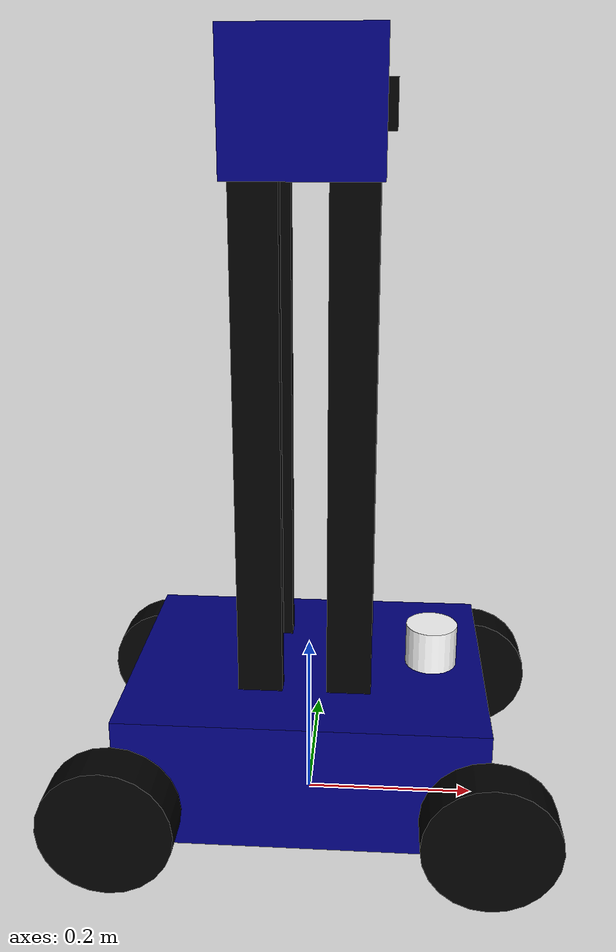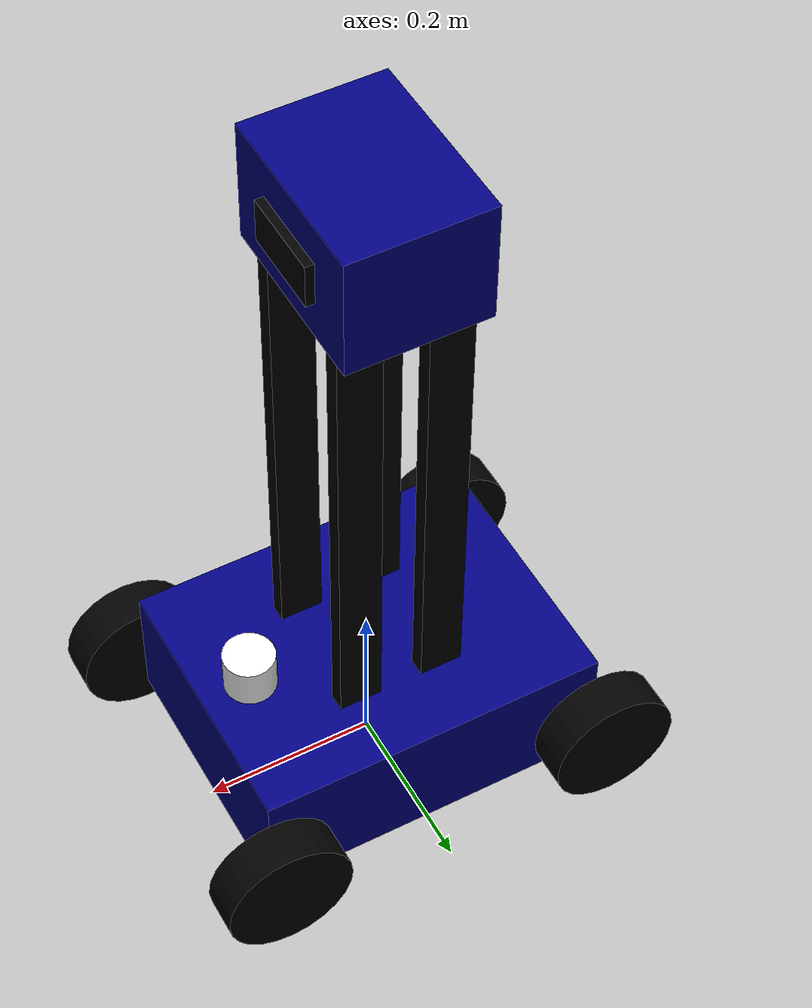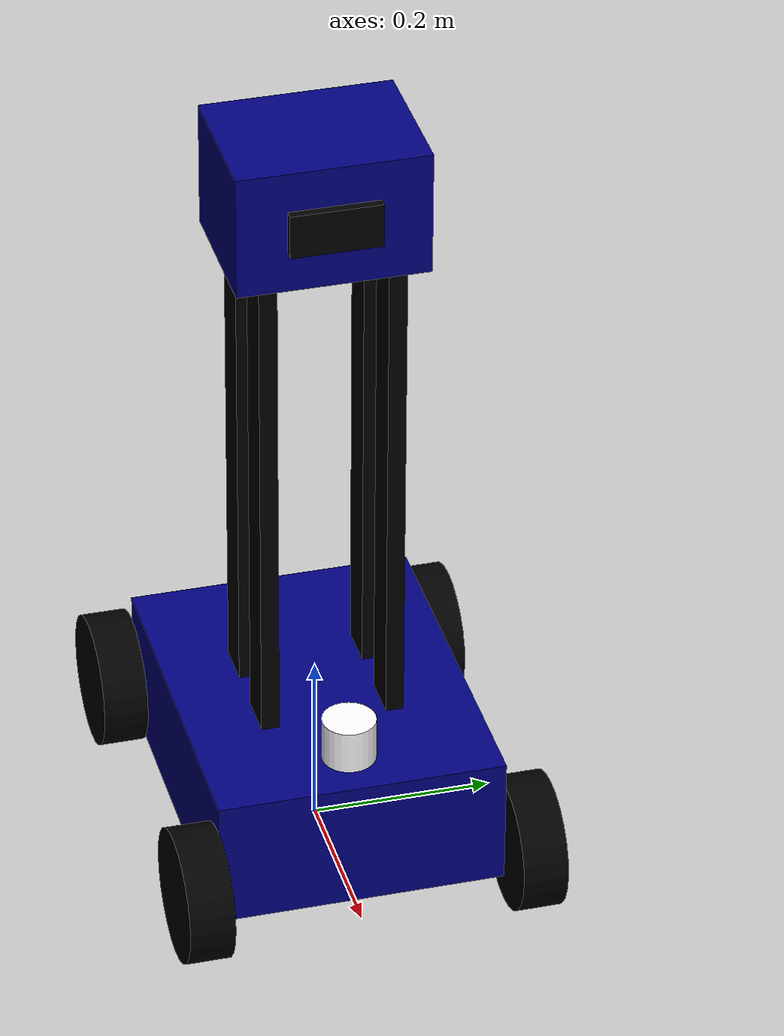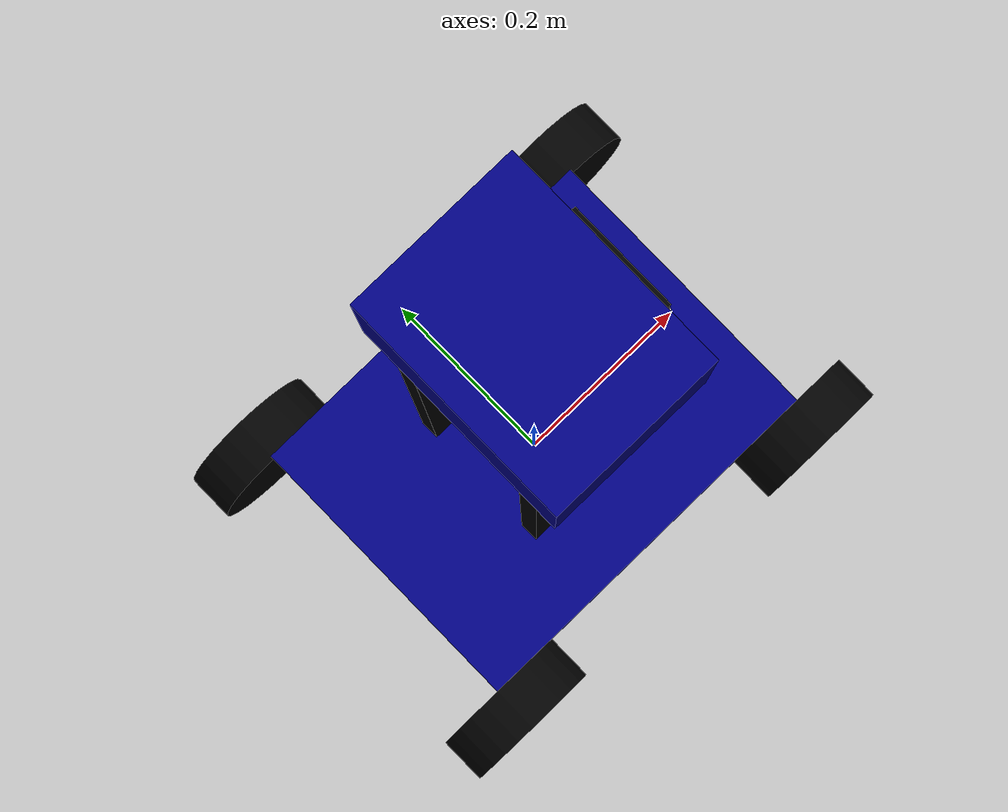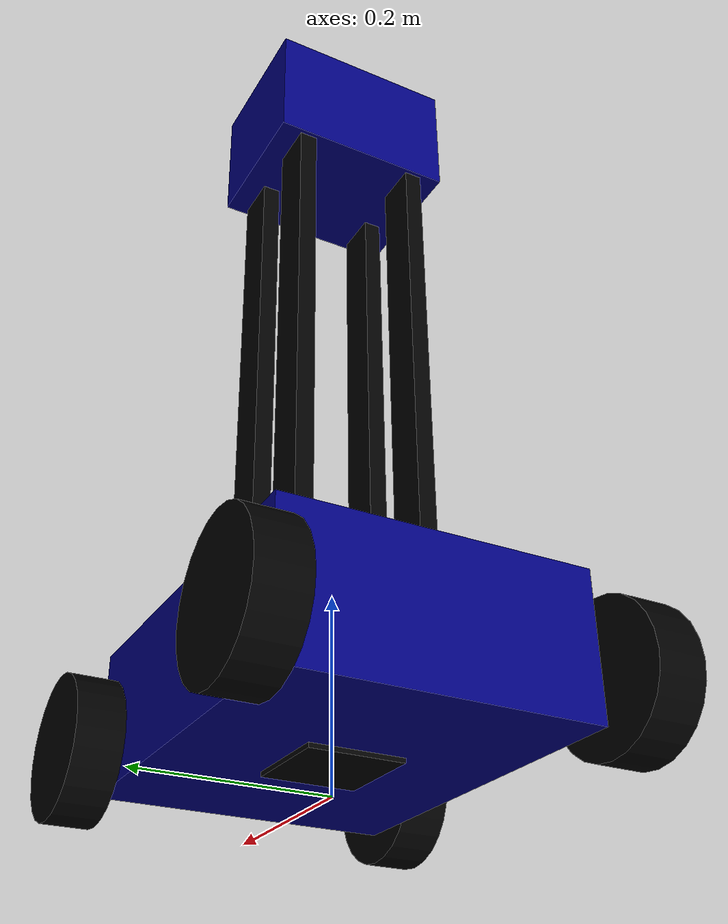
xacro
<?xml version="1.0"?>
<robot name="ELA2.0" xmlns:xacro="http://www.ros.org/wiki/xacro">
    <xacro:include filename="common_properties.xacro"/>
    <xacro:include filename="mobile_base.xacro"/>
    <xacro:include filename="mobile_base_control.xacro"/> <!-- Physical robot movement control -->
    <xacro:include filename="mobile_base_gazebo.xacro"/> <!-- Simulation robot movement control-->
    <xacro:include filename="camera.xacro"/>
    <xacro:include filename="imu.xacro"/>
    <xacro:include filename="lidar.xacro"/>
</robot>

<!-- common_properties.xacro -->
<robot xmlns:xacro="http://www.ros.org/wiki/xacro">

    <material name="blue">
        <color rgba="0 0 0.5 1" />
    </material>

    <material name="black">
        <color rgba="0 0 0 1" />
    </material>

    <material name="white">
        <color rgba="1 1 1 1" />
    </material>

    <xacro:macro name="box_inertia" params="m l w h xyz rpy">
        <inertial>
            <origin xyz="${xyz}" rpy="${rpy}" />
            <mass value="${m}" />
            <inertia ixx="${(m/12) * (h*h + l*l)}" ixy="0" ixz="0"
                     iyy="${(m/12) * (w*w + l*l)}" iyz="0"
                     izz="${(m/12) * (w*w + h*h)}" />
        </inertial>
    </xacro:macro>

    <xacro:macro name="cylinder_inertia" params="m r h xyz rpy">
        <inertial>
            <origin xyz="${xyz}" rpy="${rpy}" />
            <mass value="${m}" />
            <inertia ixx="${(m/12) * (3*r*r + h*h)}" ixy="0" ixz="0"
                     iyy="${(m/12) * (3*r*r + h*h)}" iyz="0"
                     izz="${(m/2) * (r*r)}" />
        </inertial>
    </xacro:macro>

    <xacro:macro name="sphere_inertia" params="m r xyz rpy">
        <inertial>
            <origin xyz="${xyz}" rpy="${rpy}" />
            <mass value="${m}" />
            <inertia ixx="${(2/5) * m * r * r}" ixy="0" ixz="0"
                     iyy="${(2/5) * m * r * r}" iyz="0"
                     izz="${(2/5) * m * r * r}" />
        </inertial>
    </xacro:macro>

</robot>

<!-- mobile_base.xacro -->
<robot xmlns:xacro="http://www.ros.org/wiki/xacro">

    <xacro:property name="base_length" value="0.41" />
    <xacro:property name="base_width" value="0.32" />
    <xacro:property name="base_height" value="0.15" />
    <xacro:property name="pillar_length" value="0.05" />
    <xacro:property name="pillar_width" value="0.02" />
    <xacro:property name="pillar_height" value="0.56" />
    <xacro:property name="wheel_radius" value="0.075" />
    <xacro:property name="wheel_length" value="0.05" />
    <xacro:property name="platform_length" value="0.16" />
    <xacro:property name="platform_width" value="0.21" />
    <xacro:property name="platform_height" value="0.14" />

    <xacro:macro name="wheel_link" params="prefix">
        <link name="${prefix}_wheel_link">
            <visual>
                <geometry>
                    <cylinder radius="${wheel_radius}" length="${wheel_length}"/>
                </geometry>
                <origin xyz="0 0 0" rpy="${pi / 2.0} 0 0" />
                <material name="black"/>
            </visual>
            <collision>
                <geometry>
                    <cylinder radius="${wheel_radius}" length="${wheel_length}"/>
                </geometry>
                <origin xyz="0 0 0" rpy="${pi / 2.0} 0 0" />
            </collision>
            <xacro:cylinder_inertia m="5.0" r="${5*wheel_radius}" h="${5*wheel_length}"
                                    xyz="0 0 0" rpy="${pi / 2.0} 0 0" />
        </link>
    </xacro:macro>

    <xacro:macro name="pillar_link" params="prefix">
        <link name="${prefix}_pillar_link">
            <visual>
                <geometry>
                    <box size="${pillar_length} ${pillar_width} ${pillar_height}"/>
                </geometry>
                <origin xyz="0 0 ${pillar_height / 2.0}" rpy="0 0 0" />
                <material name="black"/>
            </visual>
                <collision>
                    <geometry>
                        <box size="${pillar_length} ${pillar_width} ${pillar_height}"/>
                    </geometry>
                    <origin xyz="0 0 ${pillar_height / 2.0}" rpy="0 0 0" />
                </collision>
            <xacro:box_inertia m="5.0" l="${2*pillar_length}" w="${2*pillar_width}" h="${2*pillar_height}"
                            xyz="0 0 ${pillar_height / 2.0}" rpy="0 0 0"/>
        </link>
    </xacro:macro>

    <link name="base_footprint"/>

    <link name="base_link">
        <visual>
            <geometry>
                <box size="${base_length} ${base_width} ${base_height}"/>
            </geometry>
            <origin xyz="0 0 ${base_height / 2.0}" rpy="0 0 0" />
            <material name="blue"/>
        </visual>
            <collision>
                <geometry>
                    <box size="${base_length} ${base_width} ${base_height}"/>
                </geometry>
                <origin xyz="0 0 ${base_height / 2.0}" rpy="0 0 0" />
            </collision>
        <xacro:box_inertia m="15.0" l="${5*base_length}" w="${5*base_width}" h="${5*base_height}"
                           xyz="0 0 ${base_height / 2.0}" rpy="0 0 0"/>
    </link>

    <link name="upper_platform_link">
        <visual>
            <geometry>
                <box size="${platform_length} ${platform_width} ${platform_height}"/>
            </geometry>
            <origin xyz="0 0 0" rpy="0 0 0" />
            <material name="blue"/>
        </visual>
            <collision>
                <geometry>
                    <box size="${platform_length} ${platform_width} ${platform_height}"/>
                </geometry>
                <origin xyz="0 0 0" rpy="0 0 0" />
            </collision>
        <xacro:box_inertia m="5.0" l="${2*platform_length}" w="${2*platform_width}" h="${2*platform_height}"
                           xyz="0 0 0" rpy="0 0 0"/>
    </link>

    <xacro:wheel_link prefix="rr"/>
    <xacro:wheel_link prefix="rl"/>
    <xacro:wheel_link prefix="fr"/>
    <xacro:wheel_link prefix="fl"/>
    <xacro:pillar_link prefix="right_front"/>
    <xacro:pillar_link prefix="left_front"/>
    <xacro:pillar_link prefix="right_rear"/>
    <xacro:pillar_link prefix="left_rear"/>

    <joint name="base_joint" type="fixed">
        <parent link="base_footprint"/>
        <child link="base_link"/>
        <origin xyz="0 0 0.03" rpy="0 0 0"/>
    </joint>

    <joint name="upper_platform_joint" type="fixed">
        <parent link="base_link"/>
        <child link="upper_platform_link"/>
        <origin xyz="0 0 ${pillar_height + base_height +0.14 / 2.0}" rpy="0 0 0"/>
    </joint>

    <joint name="rr_wheel_joint" type="continuous">
        <parent link="base_link"/>
        <child link="rr_wheel_link"/>
        <origin xyz="${-base_length / 2.0} ${-(base_width + wheel_length) / 2.0} 0.045" rpy="0 0 0"/>
        <axis xyz="0 1 0"/>
    </joint>

    <joint name="rl_wheel_joint" type="continuous">
        <parent link="base_link"/>
        <child link="rl_wheel_link"/>
        <origin xyz="${-base_length / 2.0} ${(base_width + wheel_length) / 2.0} 0.045" rpy="0 0 0"/>
        <axis xyz="0 1 0"/>
    </joint>

    <joint name="fr_wheel_joint" type="continuous">
        <parent link="base_link"/>
        <child link="fr_wheel_link"/>
        <origin xyz="${base_length / 2.0} ${-(base_width + wheel_length) / 2.0} 0.045" rpy="0 0 0"/>
        <axis xyz="0 1 0"/>
    </joint>

    <joint name="fl_wheel_joint" type="continuous">
        <parent link="base_link"/>
        <child link="fl_wheel_link"/>
        <origin xyz="${base_length / 2.0} ${(base_width + wheel_length) / 2.0} 0.045" rpy="0 0 0"/>
        <axis xyz="0 1 0"/>
    </joint>

    <joint name="right_front_pillar_joint" type="fixed">
        <parent link="base_link"/>
        <child link="right_front_pillar_link"/>
        <origin xyz="0.05 0.07 ${base_height}" rpy="0 0 0"/>
        <axis xyz="0 1 0"/>
    </joint>

    <joint name="left_front_pillar_joint" type="fixed">
        <parent link="base_link"/>
        <child link="left_front_pillar_link"/>
        <origin xyz="0.05 -0.07 ${base_height}" rpy="0 0 0"/>
        <axis xyz="0 1 0"/>
    </joint>

    <joint name="right_rear_pillar_joint" type="fixed">
        <parent link="base_link"/>
        <child link="right_rear_pillar_link"/>
        <origin xyz="-0.05 0.07 ${base_height}" rpy="0 0 0"/>
        <axis xyz="0 1 0"/>
    </joint>

    <joint name="left_rear_pillar_joint" type="fixed">
        <parent link="base_link"/>
        <child link="left_rear_pillar_link"/>
        <origin xyz="-0.05 -0.07 ${base_height}" rpy="0 0 0"/>
        <axis xyz="0 1 0"/>
    </joint>

</robot>

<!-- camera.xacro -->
<robot xmlns:xacro="http://www.ros.org/wiki/xacro">

    <xacro:property name="camera_length" value="0.01"/>
    <xacro:property name="camera_width" value="0.1"/>
    <xacro:property name="camera_height" value="0.05"/>

    <link name="camera_link">
        <visual>
            <geometry>
                <box size="${camera_length} ${camera_width} ${camera_height}"/>
            </geometry>
            <material name="black" />
            <collision>
                <geometry>
                    <box size="${camera_length} ${camera_width} ${camera_height}"/>
                </geometry>
            </collision>
            <xacro:box_inertia m="0.1" l="${camera_length}" w="${camera_width}" h="${camera_height}" xyz="0 0 0" rpy="0 0 0"/>
        </visual>
    </link>

    <joint name="platform_camera_joint" type="fixed">
        <parent link="upper_platform_link"/>
        <child link="camera_link"/>
        <origin xyz="${(platform_length + camera_length) / 2.0} 0 0" rpy="0 0 0"/>
    </joint>

    <gazebo reference="camera_link">
        <material>Gazebo/Red</material>
        <sensor name="camera_sensor" type="camera">
            <pose>0 0 0 0 0 0</pose>
            <visualize>true</visualize>
            <update_rate>30.0</update_rate>
            <plugin name="camera_controller" filename="libgazebo_ros_camera.so">
                <frame_name>camera_link</frame_name>
            </plugin>
        </sensor>
    </gazebo>

</robot>

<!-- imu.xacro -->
<robot xmlns:xacro="http://www.ros.org/wiki/xacro">

    <xacro:property name="imu_length" value="0.1"/>
    <xacro:property name="imu_width" value="0.1"/>
    <xacro:property name="imu_height" value="0.01"/>

    <link name="imu_link">
        <visual>
            <geometry>
                <box size="${imu_length} ${imu_width} ${imu_height}"/>
            </geometry>
            <material name="black" />
            <collision>
                <geometry>
                    <box size="${imu_length} ${imu_width} ${imu_height}"/>
                </geometry>
            </collision>
            <xacro:box_inertia m="0.1" l="${imu_length}" w="${imu_width}" h="${imu_height}" xyz="0 0 0" rpy="0 0 0"/>
        </visual>
    </link>

    <joint name="base_imu_joint" type="fixed">
        <parent link="base_link"/>
        <child link="imu_link"/>
        <origin xyz="0 0 0" rpy="0 0 0"/>
    </joint>

    <gazebo reference="imu_link">
        <gravity>true</gravity>
        <material>Gazebo/Grey</material>
        <sensor name="imu_sensor" type="imu">
            <always_on>true</always_on>
            <update_rate>10</update_rate>
            <visualize>true</visualize>
            <plugin filename="libgazebo_ros_imu_sensor.so" name="imu">
                <ros>
                    <argument>~/out:=imu</argument>
                </ros>
                <bodyName>imu_link</bodyName>
                <updateRateHZ>10.0</updateRateHZ>
                <gaussianNoise>0.0</gaussianNoise>
                <xyzOffset>0 0 0</xyzOffset>
                <rpyOffset>0 0 0</rpyOffset>
                <frameName>imu_link</frameName>
                <initialOrientationAsReference>false</initialOrientationAsReference>
            </plugin>
            <pose>0 0 0 0 0 0</pose>
        </sensor>
    </gazebo>

</robot>

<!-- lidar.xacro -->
<robot xmlns:xacro="http://www.ros.org/wiki/xacro">

    <link name="lidar_link">
        <visual>
            <geometry>
                <cylinder radius="0.03" length="0.05"/>
            </geometry>
            <origin xyz="0 0 0" rpy="0 0 0" />
            <material name="white"/>
        </visual>
        <collision>
            <geometry>
                <cylinder radius="${wheel_radius}" length="0.1"/>
            </geometry>
            <origin xyz="0 0 0" rpy="0 0 0" />
        </collision>
        <xacro:cylinder_inertia m="1.0" r="${2*wheel_radius}" h="${2*wheel_length}"
                                xyz="0 0 0" rpy="0 0 0" />
    </link>

    <joint name="lidar_joint" type="fixed">
        <parent link="base_link"/>
        <child link="lidar_link"/>
        <origin xyz="0.145 0 ${base_height + 0.025}" rpy="0 0 0"/>
        <axis xyz="0 0 0"/>
    </joint>

    <gazebo reference="lidar_link">
        <material>Gazebo/Black</material>
        <sensor name="lidar" type="ray">
            <pose>0 0 0 0 0 0</pose>
            <visualize>true</visualize>
            <update_rate>10</update_rate>
            <ray>
                <scan>
                    <horizontal>
                        <samples>360</samples>
                        <resolution>1</resolution>
                        <min_angle>-1.57</min_angle>
                        <max_angle>1.57</max_angle>
                    </horizontal>
                </scan>
                <range>
                    <min>0.15</min>
                    <max>7.0</max>
                    <resolution>0.01</resolution>
                </range>
                <noise>
                    <type>gaussian</type>
                    <mean>0.0</mean>
                    <stddev>0.01</stddev>
                </noise>
            </ray>
            <plugin name="scan" filename="libgazebo_ros_ray_sensor.so">
                <ros>
                    <argument>~/out:=/scan</argument>
                </ros>
                <output_type>sensor_msgs/LaserScan</output_type>
                <frame_name>lidar_link</frame_name>
            </plugin>
        </sensor>
    </gazebo>

</robot>
